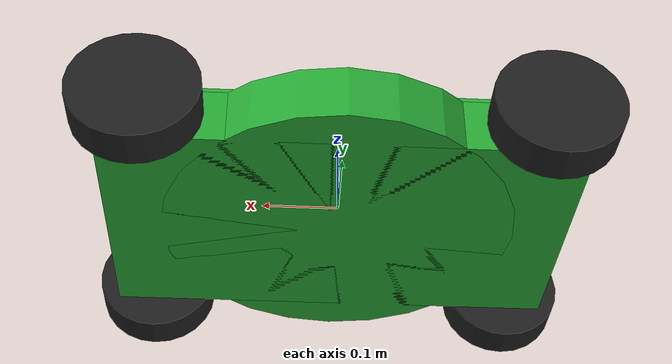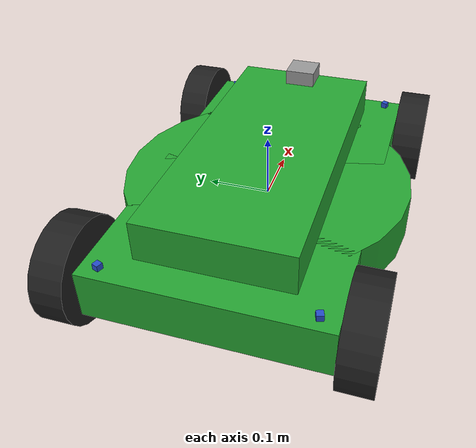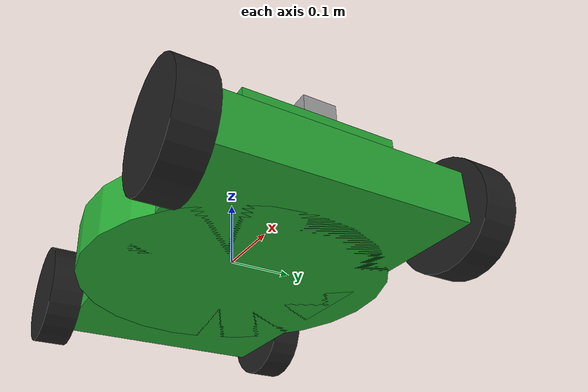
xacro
<?xml version="1.0"?>
<!-- Revolute-Revolute Manipulator -->
<robot name="4WDiffDrive" xmlns:xacro="http://www.ros.org/wiki/xacro">

  <xacro:include filename="$(find simulation_env_pkg)/models/4WDiffDrive.gazebo" />

  <!-- Scale the robot size to fit the environment -->
  <xacro:property name="scale" value="1.0" />

  <!-- Length along X-axis, Width along Y-axis, Height along Z-axis -->
  <xacro:property name="mower_width" value="${scale * 0.46}" />
  <xacro:property name="mower_length" value="${scale * 0.5}" />
  <xacro:property name="mower_height" value="${scale * 0.3}" />
  <xacro:property name="mower_mass" value="${scale * 10}" />

  <xacro:property name="base_x_offset" value="0" />

  <!-- inertia = 1/12*m(h^2+d^2) -->
  <xacro:property name="height_2" value="${mower_height * mower_height}" />
  <xacro:property name="width_2" value="${mower_width * mower_width}" />
  <xacro:property name="length_2" value="${mower_length * mower_length}" />
  <xacro:property name="mower_inertia_xx" value="${mower_mass/12.0 * (height_2 + width_2)}" />
  <xacro:property name="mower_inertia_yy" value="${mower_mass/12.0 * (height_2 + length_2)}" />
  <xacro:property name="mower_inertia_zz" value="${mower_mass/12.0 * (width_2 + length_2)}" />
  <xacro:property name="mower_i_x_pos" value="${base_x_offset}" />
  <xacro:property name="mower_i_z_pos" value="${mower_height/3.0}" />

  <xacro:property name="mower_frame_width" value="${mower_width - 2.1 * wheel_length}" />
  <xacro:property name="mower_frame_length" value="${mower_length*1.2}" />
  <xacro:property name="mower_frame_height" value="${mower_height/4.0}" />

  <xacro:property name="hardware_width" value="${mower_width/2.0}" />
  <xacro:property name="hardware_length" value="${mower_length}" />
  <xacro:property name="hardware_height" value="${mower_frame_height + camerra_height/2.0}" />
  <xacro:property name="hardware_z_offset" value="${hardware_height/2.0}" />

  <xacro:property name="wheel_length" value="${scale * 0.05}" />
  <xacro:property name="wheel_radius" value="${scale * 0.08}" />
  <xacro:property name="wheel_mass" value="${scale * 1}" />
  <xacro:property name="wheel_inertia" value="${scale * 1e-3}" />
  <xacro:property name="wheel_x_offset" value="${base_x_offset + mower_length/2.0}" />
  <xacro:property name="wheel_y_offset" value="${mower_width/2.0 - wheel_length/2.0}" />

  <xacro:property name="camerra_width" value="0.05" />
  <xacro:property name="camerra_length" value="0.05" />
  <xacro:property name="camerra_height" value="0.05" />
  <xacro:property name="camerra_x_offset" value="${mower_length/2.0 + base_x_offset - camerra_length/2.0 - 0.001}" />
  <xacro:property name="camerra_z_offset" value="${mower_frame_height + camerra_height/2.0}" />

  <xacro:property name="sonar_x_offset" value="0.28" />
  <xacro:property name="sonar_y_offset" value="0.15" />
  <xacro:property name="sonar_z_offset" value="${hardware_z_offset-0.01/1.25}" />
  <xacro:property name="sonar_angle_offset" value="0.3398" />

  <xacro:property name="wheel_kp" value="1000000.0" />
  <xacro:property name="wheel_kd" value="100.0" />
  <xacro:property name="wheel_mu1" value="1" />
  <xacro:property name="wheel_mu2" value="1" />
  <xacro:property name="wheel_slip1" value="0.5" />
  <xacro:property name="wheel_slip2" value="0" />

  <link name="robot_footprint"></link>

  <joint name="robot_footprint_joint" type="fixed">
    <origin xyz="0 0 0" rpy="0 0 0" />
    <parent link="robot_footprint" />
    <child link="chassis" />
  </joint>

  <link name='chassis'>
    <inertial>
      <mass value="${mower_mass}"/>
      <origin xyz="${mower_i_x_pos} 0 ${mower_i_z_pos}" rpy=" 0 0 0"/>
      <inertia
          ixx="${mower_inertia_xx}" ixy="0" ixz="0"
          iyy="${mower_inertia_yy}" iyz="0"
          izz="${mower_inertia_zz}" />
    </inertial>

    <collision>
      <origin xyz="${base_x_offset} 0 0" rpy=" 0 0 0"/>
      <geometry>
        <box size="${mower_frame_length} ${mower_frame_width} ${mower_frame_height}"/>
      </geometry>
    </collision>
    <visual>
      <origin xyz="${base_x_offset} 0 0" rpy=" 0 0 0"/>
      <geometry>
        <box size="${mower_frame_length} ${mower_frame_width} ${mower_frame_height}"/>
      </geometry>
    </visual>

    <!-- blade frame -->
    <collision>
      <origin xyz="${base_x_offset} 0 0" rpy=" 0 0 0"/>
      <geometry>
        <cylinder radius="${mower_width/2.0}" length="${mower_frame_height}"/>
      </geometry>
    </collision>
    <visual>
      <origin xyz="${base_x_offset} 0 0" rpy=" 0 0 0"/>
      <geometry>
        <cylinder radius="${mower_width/2.0}" length="${mower_frame_height}"/>
      </geometry>
    </visual>

    <!-- hardware frame -->
    <collision>
      <origin xyz="${base_x_offset} 0 ${hardware_z_offset}" rpy=" 0 0 0"/>
      <geometry>
        <box size="${hardware_length} ${hardware_width} ${hardware_height}"/>
      </geometry>
    </collision>
    <visual>
      <origin xyz="${base_x_offset} 0 ${hardware_z_offset}" rpy=" 0 0 0"/>
      <geometry>
        <box size="${hardware_length} ${hardware_width} ${hardware_height}"/>
      </geometry>
    </visual>
  </link>

  <!-- left back wheel -->
  <joint type="continuous" name="left_back_wheel_hinge">
    <origin xyz="-${wheel_x_offset} ${wheel_y_offset} 0" rpy="0 0 0"/>
    <child link="left_back_wheel"/>
    <parent link="chassis"/>
    <axis xyz="0 1 0" rpy="0 0 0"/>
    <limit effort="10000" velocity="1000"/>
    <joint_properties damping="1.0" friction="1.0"/>
  </joint>

  <link name="left_back_wheel">
    <inertial>
      <mass value="${wheel_mass}"/>
      <origin xyz="0.0 0 0" rpy=" 0 1.5707 1.5707"/>
      <inertia
        ixx="${wheel_inertia}" ixy="0" ixz="0"
        iyy="${wheel_inertia}" iyz="0"
        izz="${wheel_inertia}" />
    </inertial>
    <collision name="left_back_wheel_collision">
      <origin xyz="0 0 0" rpy=" 0 1.5707 1.5707"/>
      <geometry>
        <cylinder length="${wheel_length}" radius="${wheel_radius}"/>
      </geometry>
      <surface>
        <friction>
          <fdir1>1 0 0</fdir1>
          <kp>${wheel_kp}</kp> <!-- kp and kd for rubber -->
          <kd>${wheel_kd}</kd>
          <mu>${wheel_mu1}</mu>
          <mu2>${wheel_mu2}</mu2>
          <slip1>${wheel_slip1}</slip1>
          <slip2>${wheel_slip2}</slip2>
        </friction>
      </surface>
    </collision>
    <visual name="left_back_wheel_visual">
      <origin xyz="0 0 0" rpy=" 0 1.5707 1.5707"/>
      <geometry>
        <cylinder length="${wheel_length}" radius="${wheel_radius}"/>
      </geometry>
    </visual>
  </link>

  <!-- right back wheel -->
  <joint type="continuous" name="right_back_wheel_hinge">
    <origin xyz="-${wheel_x_offset} -${wheel_y_offset} 0" rpy="0 0 0"/>
    <child link="right_back_wheel"/>
    <parent link="chassis"/>
    <axis xyz="0 1 0" rpy="0 0 0"/>
    <limit effort="10000" velocity="1000"/>
    <joint_properties damping="1.0" friction="1.0"/>
  </joint>

  <link name="right_back_wheel">
    <inertial>
      <mass value="${wheel_mass}"/>
      <origin xyz="0.0 0 0" rpy=" 0 1.5707 1.5707"/>
      <inertia
          ixx="${wheel_inertia}" ixy="0" ixz="0"
          iyy="${wheel_inertia}" iyz="0"
          izz="${wheel_inertia}" />
    </inertial>
    <collision name="right_back_wheel_collision">
      <origin xyz="0 0 0" rpy=" 0 1.5707 1.5707"/>
      <geometry>
        <cylinder length="${wheel_length}" radius="${wheel_radius}"/>
      </geometry>
      <surface>
        <friction>
          <fdir1>1 0 0</fdir1>
          <kp>${wheel_kp}</kp> <!-- kp and kd for rubber -->
          <kd>${wheel_kd}</kd>
          <mu>${wheel_mu1}</mu>
          <mu2>${wheel_mu2}</mu2>
          <slip1>${wheel_slip1}</slip1>
          <slip2>${wheel_slip2}</slip2>
        </friction>
      </surface>
    </collision>
    <visual name="right_back_wheel_visual">
      <origin xyz="0 0 0" rpy=" 0 1.5707 1.5707"/>
      <geometry>
        <cylinder length="${wheel_length}" radius="${wheel_radius}"/>
      </geometry>
    </visual>
  </link>

  <!-- left front wheel -->
  <joint type="continuous" name="left_front_wheel_hinge">
    <origin xyz="${wheel_x_offset} ${wheel_y_offset} 0" rpy="0 0 0"/>
    <child link="left_front_wheel"/>
    <parent link="chassis"/>
    <axis xyz="0 1 0" rpy="0 0 0"/>
    <limit effort="10000" velocity="1000"/>
    <joint_properties damping="1.0" friction="1.0"/>
  </joint>

  <link name="left_front_wheel">
    <inertial>
      <mass value="${wheel_mass}"/>
      <origin xyz="0.0 0 0" rpy=" 0 1.5707 1.5707"/>
      <inertia
        ixx="${wheel_inertia}" ixy="0" ixz="0"
        iyy="${wheel_inertia}" iyz="0"
        izz="${wheel_inertia}" />
    </inertial>
    <collision name="left_front_wheel_collision">
      <origin xyz="0 0 0" rpy=" 0 1.5707 1.5707"/>
      <geometry>
        <cylinder length="${wheel_length}" radius="${wheel_radius}"/>
      </geometry>
      <surface>
        <friction>
          <fdir1>1 0 0</fdir1>
          <kp>${wheel_kp}</kp> <!-- kp and kd for rubber -->
          <kd>${wheel_kd}</kd>
          <mu>${wheel_mu1}</mu>
          <mu2>${wheel_mu2}</mu2>
          <slip1>${wheel_slip1}</slip1>
          <slip2>${wheel_slip2}</slip2>
        </friction>
      </surface>
    </collision>
    <visual name="left_front_wheel_visual">
      <origin xyz="0 0 0" rpy=" 0 1.5707 1.5707"/>
      <geometry>
        <cylinder length="${wheel_length}" radius="${wheel_radius}"/>
      </geometry>
    </visual>
  </link>

  <!-- right front wheel -->
  <joint type="continuous" name="right_front_wheel_hinge">
    <origin xyz="${wheel_x_offset} -${wheel_y_offset} 0" rpy="0 0 0"/>
    <child link="right_front_wheel"/>
    <parent link="chassis"/>
    <axis xyz="0 1 0" rpy="0 0 0"/>
    <limit effort="10000" velocity="1000"/>
    <joint_properties damping="1.0" friction="1.0"/>
  </joint>

  <link name="right_front_wheel">
    <inertial>
      <mass value="${wheel_mass}"/>
      <origin xyz="0.0 0 0" rpy=" 0 1.5707 1.5707"/>
      <inertia
          ixx="${wheel_inertia}" ixy="0" ixz="0"
          iyy="${wheel_inertia}" iyz="0"
          izz="${wheel_inertia}" />
    </inertial>
    <collision name="right_front_wheel_collision">
      <origin xyz="0 0 0" rpy=" 0 1.5707 1.5707"/>
      <geometry>
        <cylinder length="${wheel_length}" radius="${wheel_radius}"/>
      </geometry>
      <surface>
        <friction>
          <fdir1>1 0 0</fdir1>
          <kp>${wheel_kp}</kp> <!-- kp and kd for rubber -->
          <kd>${wheel_kd}</kd>
          <mu>${wheel_mu1}</mu>
          <mu2>${wheel_mu2}</mu2>
          <slip1>${wheel_slip1}</slip1>
          <slip2>${wheel_slip2}</slip2>
        </friction>
      </surface>
    </collision>
    <visual name="right_front_wheel_visual">
      <origin xyz="0 0 0" rpy=" 0 1.5707 1.5707"/>
      <geometry>
        <cylinder length="${wheel_length}" radius="${wheel_radius}"/>
      </geometry>
    </visual>
  </link>

  <!-- Camera link -->
  <link name='camera'>
    <inertial>
      <mass value="0.1"/>
      <origin xyz="0 0 0" rpy=" 0 0 0"/>
      <inertia
          ixx="1e-6" ixy="0" ixz="0"
          iyy="1e-6" iyz="0"
          izz="1e-6"/>
    </inertial>
    <collision name='camera_collision'>
      <origin xyz="0 0 0" rpy=" 0 0 0"/>
      <geometry>
        <box size="${camerra_length} ${camerra_width} ${camerra_height}"/>
      </geometry>
    </collision>
    <visual name='camera_visual'>
      <origin xyz="0 0 0" rpy=" 0 0 0"/>
      <geometry>
        <box size="${camerra_length} ${camerra_width} ${camerra_height}"/>
      </geometry>
    </visual>
  </link>

  <joint type="fixed" name="camera_joint">
    <origin xyz="${camerra_x_offset} 0 ${camerra_z_offset}" rpy="0 0 0"/>
    <child link="camera"/>
    <parent link="chassis"/>
    <axis xyz="0 1 0" rpy="0 0 0"/>
    <limit effort="10000" velocity="1000"/>
    <joint_properties damping="1.0" friction="1.0"/>
  </joint>

  <!-- Sonar link (Front left) -->
  <joint name="sonar_front_left_joint" type="fixed">
    <axis xyz="0 1 0" />
    <origin rpy="0 0 ${sonar_angle_offset}" xyz="${sonar_x_offset} ${sonar_y_offset} ${sonar_z_offset}" />
    <parent link="chassis"/>
    <child link="sonar_front_left"/>
  </joint>

  <link name="sonar_front_left">
    <collision>
      <origin xyz="0 0 0" rpy="0 0 0"/>
      <geometry>
        <box size="0.01 0.01 0.01"/>
      </geometry>
    </collision>

    <visual>
      <origin xyz="0 0 0" rpy="0 0 0"/>
      <geometry>
        <box size="0.01 0.01 0.01"/>
      </geometry>
    </visual>

    <inertial>
      <mass value="1e-5" />
      <origin xyz="0 0 0" rpy="0 0 0"/>
      <inertia ixx="1e-6" ixy="0" ixz="0" iyy="1e-6" iyz="0" izz="1e-6" />
    </inertial>
  </link>

  <!-- Sonar link (Front right) -->
  <joint name="sonar_front_right_joint" type="fixed">
    <axis xyz="0 1 0" />
    <origin rpy="0 0 ${-sonar_angle_offset}" xyz="${sonar_x_offset} ${-sonar_y_offset} ${sonar_z_offset}" />
    <parent link="chassis"/>
    <child link="sonar_front_right"/>
  </joint>

  <link name="sonar_front_right">
    <collision>
      <origin xyz="0 0 0" rpy="0 0 0"/>
      <geometry>
        <box size="0.01 0.01 0.01"/>
      </geometry>
    </collision>

    <visual>
      <origin xyz="0 0 0" rpy="0 0 0"/>
      <geometry>
        <box size="0.01 0.01 0.01"/>
      </geometry>
    </visual>

    <inertial>
      <mass value="1e-5" />
      <origin xyz="0 0 0" rpy="0 0 0"/>
      <inertia ixx="1e-6" ixy="0" ixz="0" iyy="1e-6" iyz="0" izz="1e-6" />
    </inertial>
  </link>

  <!-- Sonar link (Rear left) -->
  <joint name="sonar_rear_left_joint" type="fixed">
    <axis xyz="0 1 0" />
    <origin rpy="0 0 ${3.14 - sonar_angle_offset}" xyz="${-sonar_x_offset} ${sonar_y_offset} ${sonar_z_offset}" />
    <parent link="chassis"/>
    <child link="sonar_rear_left"/>
  </joint>

  <link name="sonar_rear_left">
    <collision>
      <origin xyz="0 0 0" rpy="0 0 0"/>
      <geometry>
        <box size="0.01 0.01 0.01"/>
      </geometry>
    </collision>

    <visual>
      <origin xyz="0 0 0" rpy="0 0 0"/>
      <geometry>
        <box size="0.01 0.01 0.01"/>
      </geometry>
    </visual>

    <inertial>
      <mass value="1e-5" />
      <origin xyz="0 0 0" rpy="0 0 0"/>
      <inertia ixx="1e-6" ixy="0" ixz="0" iyy="1e-6" iyz="0" izz="1e-6" />
    </inertial>
  </link>

  <!-- Sonar link (Rear right) -->
  <joint name="sonar_rear_right_joint" type="fixed">
    <axis xyz="0 1 0" />
    <origin rpy="0 0 ${3.14 + sonar_angle_offset}" xyz="${-sonar_x_offset} ${-sonar_y_offset} ${sonar_z_offset}" />
    <parent link="chassis"/>
    <child link="sonar_rear_right"/>
  </joint>

  <link name="sonar_rear_right">
    <collision>
      <origin xyz="0 0 0" rpy="0 0 0"/>
      <geometry>
        <box size="0.01 0.01 0.01"/>
      </geometry>
    </collision>

    <visual>
      <origin xyz="0 0 0" rpy="0 0 0"/>
      <geometry>
        <box size="0.01 0.01 0.01"/>
      </geometry>
    </visual>

    <inertial>
      <mass value="1e-5" />
      <origin xyz="0 0 0" rpy="0 0 0"/>
      <inertia ixx="1e-6" ixy="0" ixz="0" iyy="1e-6" iyz="0" izz="1e-6" />
    </inertial>
  </link>

</robot>
